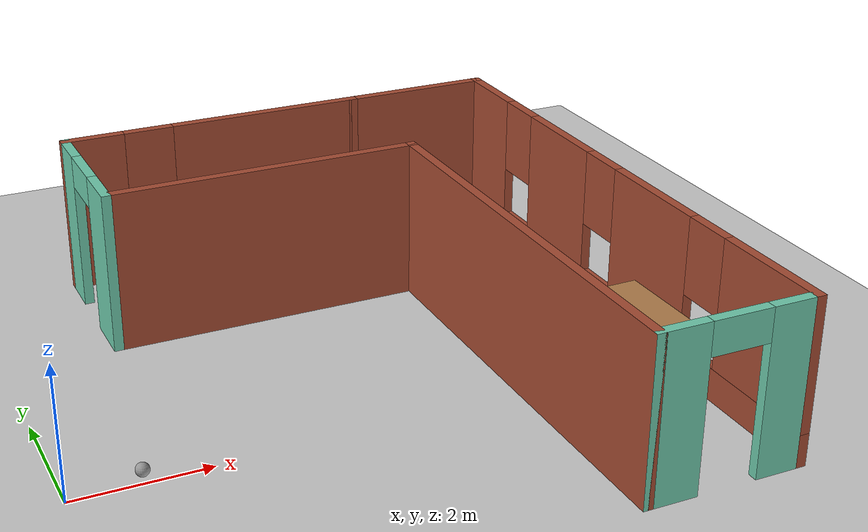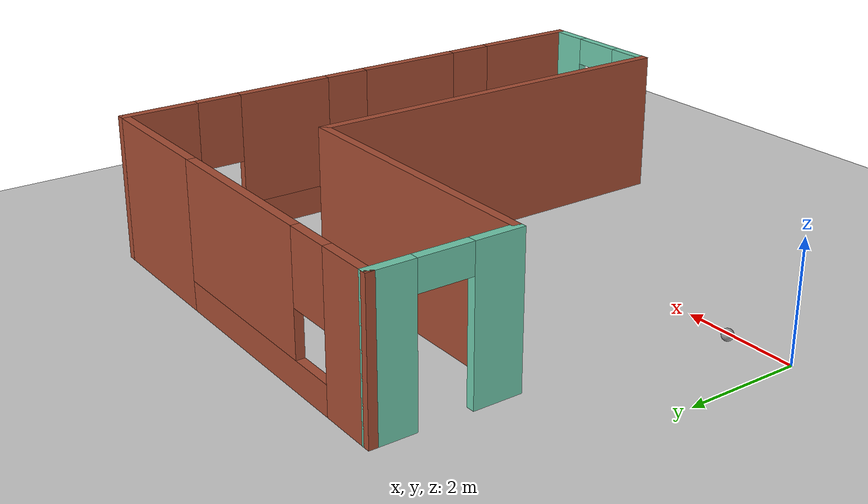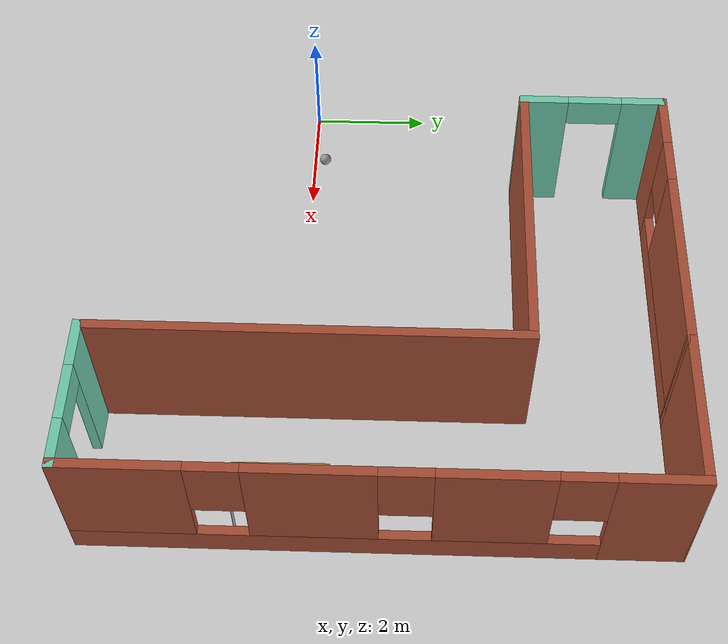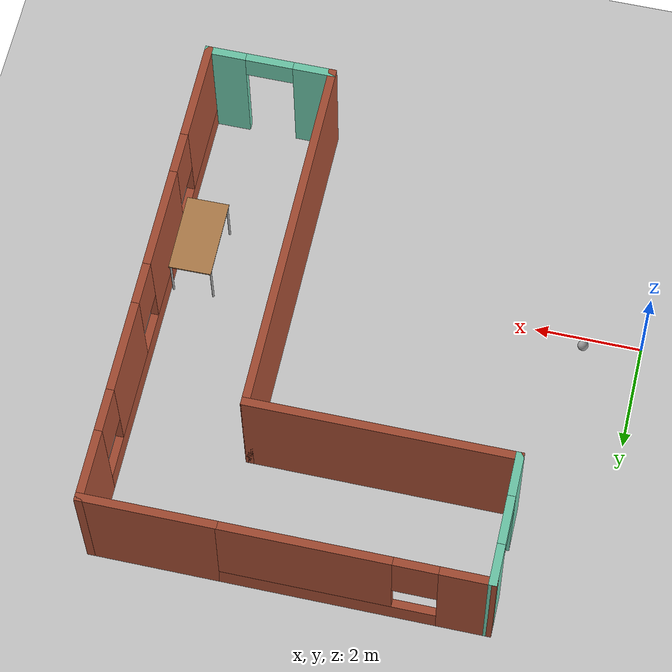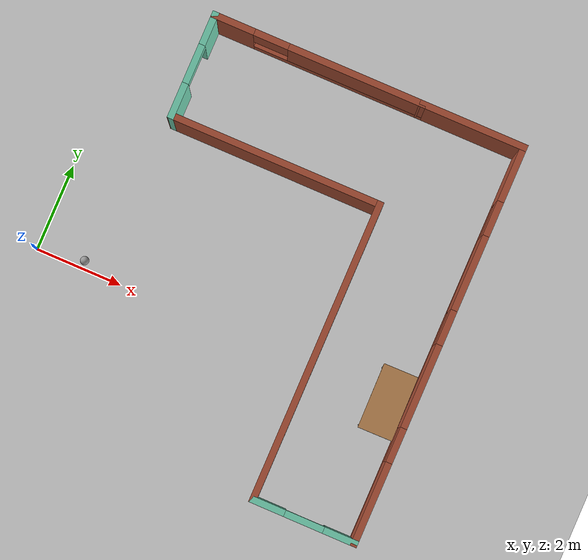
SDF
<sdf version="1.6">
 <world name="default">
  <plugin name="hello" filename="libhello.so"/>
  <light name="sun" type="directional">
   <pose>0 0 10 0 -0 0</pose>
   <diffuse>0.8 0.8 0.8 1</diffuse>
   <specular>0.2 0.2 0.2 1</specular>
   <attenuation>
    <range>1000</range>
    <constant>0.9</constant>
    <linear>0.01</linear>
    <quadratic>0.001</quadratic>
   </attenuation>
   <direction>-0.5 0.1 -0.9</direction>
  </light>
  <model name="ground_plane">
   <static>1</static>
   <link name="link">
    <collision name="collision">
     <geometry><plane><normal>0 0 1</normal><size>100 100</size></plane></geometry>
     <surface>
      <contact><collide_bitmask>65535</collide_bitmask></contact>
      <friction><ode><mu>100</mu><mu2>50</mu2></ode></friction>
     </surface>
    </collision>
    <visual name="visual">
     <cast_shadows>0</cast_shadows>
     <geometry><plane><normal>0 0 1</normal><size>100 100</size></plane></geometry>
     <material>
      <script><uri>file://media/materials/scripts/gazebo.material</uri><name>Gazebo/Grey</name></script>
     </material>
    </visual>
   </link>
  </model>
  <gravity>0 0 -9.8</gravity>
  <magnetic_field>6e-06 2.3e-05 -4.2e-05</magnetic_field>
  <atmosphere type="adiabatic"/>
  <physics name="default_physics" default="0" type="ode">
   <max_step_size>0.001</max_step_size>
   <real_time_factor>1</real_time_factor>
   <real_time_update_rate>1000</real_time_update_rate>
  </physics>
  <scene><ambient>0.4 0.4 0.4 1</ambient><background>0.7 0.7 0.7 1</background><shadows>1</shadows></scene>
  <spherical_coordinates>
   <surface_model>EARTH_WGS84</surface_model>
   <latitude_deg>0</latitude_deg>
   <longitude_deg>0</longitude_deg>
   <elevation>0</elevation>
   <heading_deg>0</heading_deg>
  </spherical_coordinates>
  <model name="table">
   <static>1</static>
   <link name="link">
    <collision name="surface">
     <pose>0 0 1 0 -0 0</pose>
     <geometry><box><size>1.5 0.8 0.03</size></box></geometry>
     <surface><friction><ode><mu>0.6</mu><mu2>0.6</mu2></ode></friction></surface>
    </collision>
    <visual name="visual1">
     <pose>0 0 1 0 -0 0</pose>
     <geometry><box><size>1.5 0.8 0.03</size></box></geometry>
     <material>
      <script><uri>file://media/materials/scripts/gazebo.material</uri><name>Gazebo/Wood</name></script>
     </material>
    </visual>
    <collision name="front_left_leg">
     <pose>0.68 0.38 0.5 0 -0 0</pose>
     <geometry><cylinder><radius>0.02</radius><length>1</length></cylinder></geometry>
    </collision>
    <visual name="front_left_leg">
     <pose>0.68 0.38 0.5 0 -0 0</pose>
     <geometry><cylinder><radius>0.02</radius><length>1</length></cylinder></geometry>
     <material>
      <script><uri>file://media/materials/scripts/gazebo.material</uri><name>Gazebo/Grey</name></script>
     </material>
    </visual>
    <collision name="front_right_leg">
     <pose>0.68 -0.38 0.5 0 -0 0</pose>
     <geometry><cylinder><radius>0.02</radius><length>1</length></cylinder></geometry>
    </collision>
    <visual name="front_right_leg">
     <pose>0.68 -0.38 0.5 0 -0 0</pose>
     <geometry><cylinder><radius>0.02</radius><length>1</length></cylinder></geometry>
     <material>
      <script><uri>file://media/materials/scripts/gazebo.material</uri><name>Gazebo/Grey</name></script>
     </material>
    </visual>
    <collision name="back_right_leg">
     <pose>-0.68 -0.38 0.5 0 -0 0</pose>
     <geometry><cylinder><radius>0.02</radius><length>1</length></cylinder></geometry>
    </collision>
    <visual name="back_right_leg">
     <pose>-0.68 -0.38 0.5 0 -0 0</pose>
     <geometry><cylinder><radius>0.02</radius><length>1</length></cylinder></geometry>
     <material>
      <script><uri>file://media/materials/scripts/gazebo.material</uri><name>Gazebo/Grey</name></script>
     </material>
    </visual>
    <collision name="back_left_leg">
     <pose>-0.68 0.38 0.5 0 -0 0</pose>
     <geometry><cylinder><radius>0.02</radius><length>1</length></cylinder></geometry>
    </collision>
    <visual name="back_left_leg">
     <pose>-0.68 0.38 0.5 0 -0 0</pose>
     <geometry><cylinder><radius>0.02</radius><length>1</length></cylinder></geometry>
     <material>
      <script><uri>file://media/materials/scripts/gazebo.material</uri><name>Gazebo/Grey</name></script>
     </material>
    </visual>
   </link>
   <pose>8.41366 -0.072237 0 0 0 -1.56012</pose>
  </model>
  <model name="building">
   <pose>5.30825 1.44581 0 0 -0 0</pose>
   <link name="Wall_13">
    <pose>-3.59992 3.42506 0 0 0 -1.5708</pose>
    <visual name="Wall_13_Visual_0">
     <pose>-0.864263 0 1.25 0 -0 0</pose>
     <geometry><box><size>0.771473 0.15 2.5</size></box></geometry>
     <material>
      <script><uri>file://media/materials/scripts/gazebo.material</uri><name>Gazebo/Grey</name></script>
      <ambient>0.435294 0.796078 0.67451 1</ambient>
     </material>
     <meta><layer>0</layer></meta>
    </visual>
    <collision name="Wall_13_Collision_0">
     <geometry><box><size>0.771473 0.15 2.5</size></box></geometry>
     <pose>-0.864263 0 1.25 0 -0 0</pose>
    </collision>
    <visual name="Wall_13_Visual_1">
     <pose>0.835737 0 1.25 0 -0 0</pose>
     <geometry><box><size>0.828527 0.15 2.5</size></box></geometry>
     <material>
      <script><uri>file://media/materials/scripts/gazebo.material</uri><name>Gazebo/Grey</name></script>
      <ambient>0.435294 0.796078 0.67451 1</ambient>
     </material>
     <meta><layer>0</layer></meta>
    </visual>
    <collision name="Wall_13_Collision_1">
     <geometry><box><size>0.828527 0.15 2.5</size></box></geometry>
     <pose>0.835737 0 1.25 0 -0 0</pose>
    </collision>
    <visual name="Wall_13_Visual_2">
     <pose>-0.028527 0 2.25 0 -0 0</pose>
     <geometry><box><size>0.9 0.15 0.5</size></box></geometry>
     <material>
      <script><uri>file://media/materials/scripts/gazebo.material</uri><name>Gazebo/Grey</name></script>
      <ambient>0.435294 0.796078 0.67451 1</ambient>
     </material>
     <meta><layer>0</layer></meta>
    </visual>
    <collision name="Wall_13_Collision_2">
     <geometry><box><size>0.9 0.15 0.5</size></box></geometry>
     <pose>-0.028527 0 2.25 0 -0 0</pose>
    </collision>
   </link>
   <link name="Wall_14">
    <collision name="Wall_14_Collision">
     <geometry><box><size>5 0.15 2.5</size></box></geometry>
     <pose>0 0 1.25 0 -0 0</pose>
    </collision>
    <visual name="Wall_14_Visual">
     <pose>0 0 1.25 0 -0 0</pose>
     <geometry><box><size>5 0.15 2.5</size></box></geometry>
     <material>
      <script><uri>file://media/materials/scripts/gazebo.material</uri><name>Gazebo/Bricks</name></script>
      <ambient>1 1 1 1</ambient>
     </material>
     <meta><layer>0</layer></meta>
    </visual>
    <pose>-1.17491 2.25006 0 0 -0 0</pose>
   </link>
   <link name="Wall_16">
    <pose>-1.17508 4.59994 0 0 0 -5e-05</pose>
    <visual name="Wall_16_Visual_0">
     <pose>-1.99871 0 1.25 0 -0 0</pose>
     <geometry><box><size>1.00257 0.15 2.5</size></box></geometry>
     <material>
      <script><uri>file://media/materials/scripts/gazebo.material</uri><name>Gazebo/Bricks</name></script>
      <ambient>1 1 1 1</ambient>
     </material>
     <meta><layer>0</layer></meta>
    </visual>
    <collision name="Wall_16_Collision_0">
     <geometry><box><size>1.00257 0.15 2.5</size></box></geometry>
     <pose>-1.99871 0 1.25 0 -0 0</pose>
    </collision>
    <visual name="Wall_16_Visual_1">
     <pose>0.501286 0 0.25 0 -0 0</pose>
     <geometry><box><size>3.99743 0.15 0.5</size></box></geometry>
     <material>
      <script><uri>file://media/materials/scripts/gazebo.material</uri><name>Gazebo/Bricks</name></script>
      <ambient>1 1 1 1</ambient>
     </material>
     <meta><layer>0</layer></meta>
    </visual>
    <collision name="Wall_16_Collision_1">
     <geometry><box><size>3.99743 0.15 0.5</size></box></geometry>
     <pose>0.501286 0 0.25 0 -0 0</pose>
    </collision>
    <visual name="Wall_16_Visual_2">
     <pose>0.901286 0 1.5 0 -0 0</pose>
     <geometry><box><size>3.19743 0.15 2</size></box></geometry>
     <material>
      <script><uri>file://media/materials/scripts/gazebo.material</uri><name>Gazebo/Bricks</name></script>
      <ambient>1 1 1 1</ambient>
     </material>
     <meta><layer>0</layer></meta>
    </visual>
    <collision name="Wall_16_Collision_2">
     <geometry><box><size>3.19743 0.15 2</size></box></geometry>
     <pose>0.901286 0 1.5 0 -0 0</pose>
    </collision>
    <visual name="Wall_16_Visual_3">
     <pose>-1.09743 0 1.9 0 -0 0</pose>
     <geometry><box><size>0.8 0.15 1.2</size></box></geometry>
     <material>
      <script><uri>file://media/materials/scripts/gazebo.material</uri><name>Gazebo/Bricks</name></script>
      <ambient>1 1 1 1</ambient>
     </material>
     <meta><layer>0</layer></meta>
    </visual>
    <collision name="Wall_16_Collision_3">
     <geometry><box><size>0.8 0.15 1.2</size></box></geometry>
     <pose>-1.09743 0 1.9 0 -0 0</pose>
    </collision>
   </link>
   <link name="Wall_18">
    <collision name="Wall_18_Collision">
     <geometry><box><size>7 0.15 2.5</size></box></geometry>
     <pose>0 0 1.25 0 -0 0</pose>
    </collision>
    <visual name="Wall_18_Visual">
     <pose>0 0 1.25 0 -0 0</pose>
     <geometry><box><size>7 0.15 2.5</size></box></geometry>
     <material>
      <script><uri>file://media/materials/scripts/gazebo.material</uri><name>Gazebo/Bricks</name></script>
      <ambient>1 1 1 1</ambient>
     </material>
     <meta><layer>0</layer></meta>
    </visual>
    <pose>1.25008 -1.17494 0 0 0 -1.5708</pose>
   </link>
   <link name="Wall_20">
    <pose>2.42508 -4.59994 0 0 -0 0</pose>
    <visual name="Wall_20_Visual_0">
     <pose>-0.845464 0 1.25 0 -0 0</pose>
     <geometry><box><size>0.809072 0.15 2.5</size></box></geometry>
     <material>
      <script><uri>file://media/materials/scripts/gazebo.material</uri><name>Gazebo/Grey</name></script>
      <ambient>0.435294 0.796078 0.67451 1</ambient>
     </material>
     <meta><layer>0</layer></meta>
    </visual>
    <collision name="Wall_20_Collision_0">
     <geometry><box><size>0.809072 0.15 2.5</size></box></geometry>
     <pose>-0.845464 0 1.25 0 -0 0</pose>
    </collision>
    <visual name="Wall_20_Visual_1">
     <pose>0.854536 0 1.25 0 -0 0</pose>
     <geometry><box><size>0.790928 0.15 2.5</size></box></geometry>
     <material>
      <script><uri>file://media/materials/scripts/gazebo.material</uri><name>Gazebo/Grey</name></script>
      <ambient>0.435294 0.796078 0.67451 1</ambient>
     </material>
     <meta><layer>0</layer></meta>
    </visual>
    <collision name="Wall_20_Collision_1">
     <geometry><box><size>0.790928 0.15 2.5</size></box></geometry>
     <pose>0.854536 0 1.25 0 -0 0</pose>
    </collision>
    <visual name="Wall_20_Visual_2">
     <pose>0.009072 0 2.25 0 -0 0</pose>
     <geometry><box><size>0.9 0.15 0.5</size></box></geometry>
     <material>
      <script><uri>file://media/materials/scripts/gazebo.material</uri><name>Gazebo/Grey</name></script>
      <ambient>0.435294 0.796078 0.67451 1</ambient>
     </material>
     <meta><layer>0</layer></meta>
    </visual>
    <collision name="Wall_20_Collision_2">
     <geometry><box><size>0.9 0.15 0.5</size></box></geometry>
     <pose>0.009072 0 2.25 0 -0 0</pose>
    </collision>
   </link>
   <link name="Wall_23">
    <collision name="Wall_23_Collision">
     <geometry><box><size>2.5 0.15 2.5</size></box></geometry>
     <pose>0 0 1.25 0 -0 0</pose>
    </collision>
    <visual name="Wall_23_Visual">
     <pose>0 0 1.25 0 -0 0</pose>
     <geometry><box><size>2.5 0.15 2.5</size></box></geometry>
     <material>
      <script><uri>file://media/materials/scripts/gazebo.material</uri><name>Gazebo/Bricks</name></script>
      <ambient>1 1 1 1</ambient>
     </material>
     <meta><layer>0</layer></meta>
    </visual>
    <pose>2.42475 4.59982 0 0 -0 0</pose>
   </link>
   <link name="Wall_24">
    <pose>3.59992 -6.1e-05 0 0 0 -1.57076</pose>
    <visual name="Wall_24_Visual_0">
     <pose>-4.00275 0 1.25 0 -0 0</pose>
     <geometry><box><size>1.3445 0.15 2.5</size></box></geometry>
     <material>
      <script><uri>file://media/materials/scripts/gazebo.material</uri><name>Gazebo/Bricks</name></script>
      <ambient>1 1 1 1</ambient>
     </material>
     <meta><layer>0</layer></meta>
    </visual>
    <collision name="Wall_24_Collision_0">
     <geometry><box><size>1.3445 0.15 2.5</size></box></geometry>
     <pose>-4.00275 0 1.25 0 -0 0</pose>
    </collision>
    <visual name="Wall_24_Visual_1">
     <pose>0.672252 0 0.25 0 -0 0</pose>
     <geometry><box><size>8.0055 0.15 0.5</size></box></geometry>
     <material>
      <script><uri>file://media/materials/scripts/gazebo.material</uri><name>Gazebo/Bricks</name></script>
      <ambient>1 1 1 1</ambient>
     </material>
     <meta><layer>0</layer></meta>
    </visual>
    <collision name="Wall_24_Collision_1">
     <geometry><box><size>8.0055 0.15 0.5</size></box></geometry>
     <pose>0.672252 0 0.25 0 -0 0</pose>
    </collision>
    <visual name="Wall_24_Visual_2">
     <pose>-1.66338 0 1.5 0 -0 0</pose>
     <geometry><box><size>1.73424 0.15 2</size></box></geometry>
     <material>
      <script><uri>file://media/materials/scripts/gazebo.material</uri><name>Gazebo/Bricks</name></script>
      <ambient>1 1 1 1</ambient>
     </material>
     <meta><layer>0</layer></meta>
    </visual>
    <collision name="Wall_24_Collision_2">
     <geometry><box><size>1.73424 0.15 2</size></box></geometry>
     <pose>-1.66338 0 1.5 0 -0 0</pose>
    </collision>
    <visual name="Wall_24_Visual_3">
     <pose>0.971434 0 1.5 0 -0 0</pose>
     <geometry><box><size>1.93537 0.15 2</size></box></geometry>
     <material>
      <script><uri>file://media/materials/scripts/gazebo.material</uri><name>Gazebo/Bricks</name></script>
      <ambient>1 1 1 1</ambient>
     </material>
     <meta><layer>0</layer></meta>
    </visual>
    <collision name="Wall_24_Collision_3">
     <geometry><box><size>1.93537 0.15 2</size></box></geometry>
     <pose>0.971434 0 1.5 0 -0 0</pose>
    </collision>
    <visual name="Wall_24_Visual_4">
     <pose>3.70706 0 1.5 0 -0 0</pose>
     <geometry><box><size>1.93588 0.15 2</size></box></geometry>
     <material>
      <script><uri>file://media/materials/scripts/gazebo.material</uri><name>Gazebo/Bricks</name></script>
      <ambient>1 1 1 1</ambient>
     </material>
     <meta><layer>0</layer></meta>
    </visual>
    <collision name="Wall_24_Collision_4">
     <geometry><box><size>1.93588 0.15 2</size></box></geometry>
     <pose>3.70706 0 1.5 0 -0 0</pose>
    </collision>
    <visual name="Wall_24_Visual_5">
     <pose>-2.9305 0 1.9 0 -0 0</pose>
     <geometry><box><size>0.8 0.15 1.2</size></box></geometry>
     <material>
      <script><uri>file://media/materials/scripts/gazebo.material</uri><name>Gazebo/Bricks</name></script>
      <ambient>1 1 1 1</ambient>
     </material>
     <meta><layer>0</layer></meta>
    </visual>
    <collision name="Wall_24_Collision_5">
     <geometry><box><size>0.8 0.15 1.2</size></box></geometry>
     <pose>-2.9305 0 1.9 0 -0 0</pose>
    </collision>
    <visual name="Wall_24_Visual_6">
     <pose>-0.396253 0 1.9 0 -0 0</pose>
     <geometry><box><size>0.8 0.15 1.2</size></box></geometry>
     <material>
      <script><uri>file://media/materials/scripts/gazebo.material</uri><name>Gazebo/Bricks</name></script>
      <ambient>1 1 1 1</ambient>
     </material>
     <meta><layer>0</layer></meta>
    </visual>
    <collision name="Wall_24_Collision_6">
     <geometry><box><size>0.8 0.15 1.2</size></box></geometry>
     <pose>-0.396253 0 1.9 0 -0 0</pose>
    </collision>
    <visual name="Wall_24_Visual_7">
     <pose>2.33912 0 1.9 0 -0 0</pose>
     <geometry><box><size>0.8 0.15 1.2</size></box></geometry>
     <material>
      <script><uri>file://media/materials/scripts/gazebo.material</uri><name>Gazebo/Bricks</name></script>
      <ambient>1 1 1 1</ambient>
     </material>
     <meta><layer>0</layer></meta>
    </visual>
    <collision name="Wall_24_Collision_7">
     <geometry><box><size>0.8 0.15 1.2</size></box></geometry>
     <pose>2.33912 0 1.9 0 -0 0</pose>
    </collision>
   </link>
   <static>1</static>
  </model>
  <model name="my_ball">
   <link name="link_0">
    <inertial>
     <mass>1</mass>
     <inertia><ixx>0.1</ixx><ixy>0</ixy><ixz>0</ixz><iyy>0.1</iyy><iyz>0</iyz><izz>0.1</izz></inertia>
    </inertial>
    <visual name="visual">
     <geometry><sphere><radius>0.1</radius></sphere></geometry>
     <material>
      <lighting>1</lighting>
      <script><uri>file://media/materials/scripts/gazebo.material</uri><name>Gazebo/Grey</name></script>
      <shader type="pixel"><normal_map>__default__</normal_map></shader>
      <ambient>1 1 1 1</ambient>
      <diffuse>1 1 1 1</diffuse>
      <specular>1 1 1 0.2</specular>
      <emissive>1 1 1 1</emissive>
     </material>
    </visual>
    <collision name="collision">
     <geometry><sphere><radius>0.1</radius></sphere></geometry>
     <surface>
      <friction>
       <ode><mu>1</mu><mu2>1</mu2><fdir1>0 0 0</fdir1><slip1>0</slip1><slip2>0</slip2></ode>
       <torsional>
        <coefficient>1</coefficient>
        <patch_radius>0</patch_radius>
        <surface_radius>0</surface_radius>
        <use_patch_radius>1</use_patch_radius>
        <ode><slip>0</slip></ode>
       </torsional>
      </friction>
      <bounce><restitution_coefficient>0</restitution_coefficient><threshold>1e+06</threshold></bounce>
      <contact>
       <collide_without_contact>0</collide_without_contact>
       <collide_without_contact_bitmask>1</collide_without_contact_bitmask>
       <collide_bitmask>1</collide_bitmask>
       <ode>
        <soft_cfm>0</soft_cfm>
        <soft_erp>0.2</soft_erp>
        <kp>1e+13</kp>
        <kd>1</kd>
        <max_vel>0.01</max_vel>
        <min_depth>0</min_depth>
       </ode>
       <bullet>
        <split_impulse>1</split_impulse>
        <split_impulse_penetration_threshold>-0.01</split_impulse_penetration_threshold>
        <soft_cfm>0</soft_cfm>
        <soft_erp>0.2</soft_erp>
        <kp>1e+13</kp>
        <kd>1</kd>
       </bullet>
      </contact>
     </surface>
    </collision>
   </link>
   <static>0</static>
   <pose>1.06494 0.182403 0.1 0 -0 0</pose>
  </model>
 </world>
</sdf>
